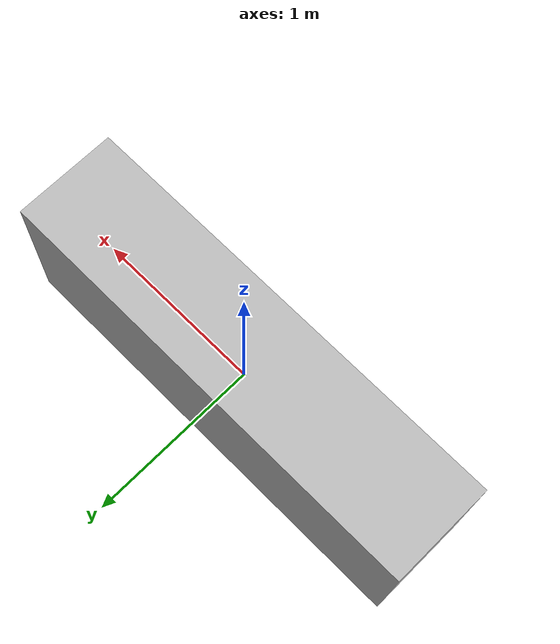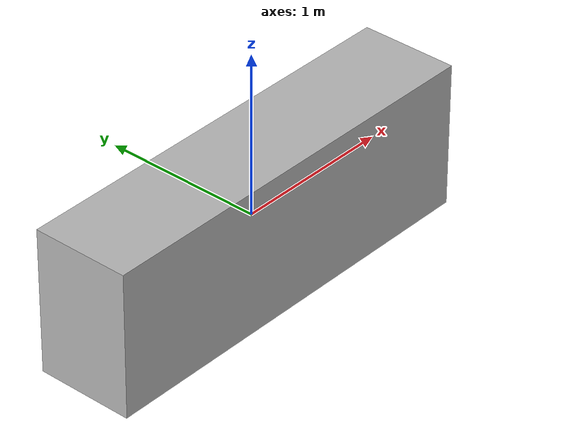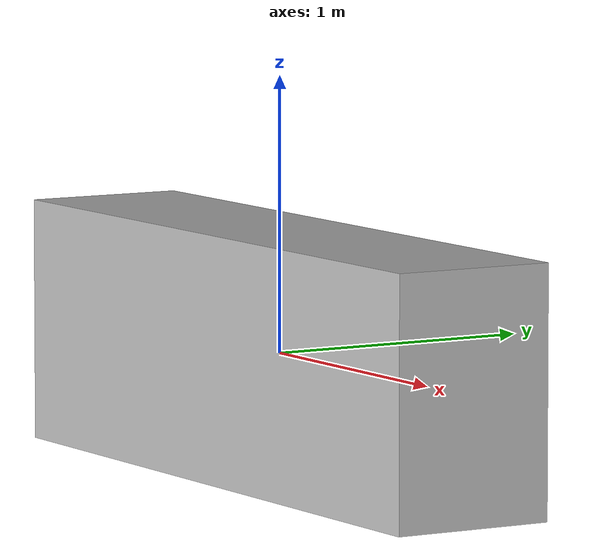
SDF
<?xml version='1.0'?>
<sdf version="1.4">
<model name="laminar_flow_box_2">
    <static>true</static>
    <link name="link">
      <pose>0 0 -0.005 0 0 0</pose>
      <collision name="collision">
        <geometry>
          <box>
            <size>2.6 0.6 0.9</size>
          </box>
        </geometry>
      </collision>
      <visual name="visual">
        <geometry>
          <box>
            <size>2.6 0.6 0.9</size>
          </box>
        </geometry>
      </visual>
    </link>
  </model>
</sdf>
